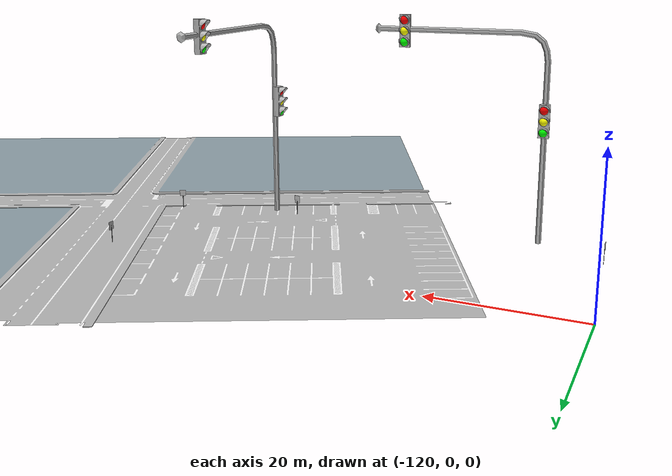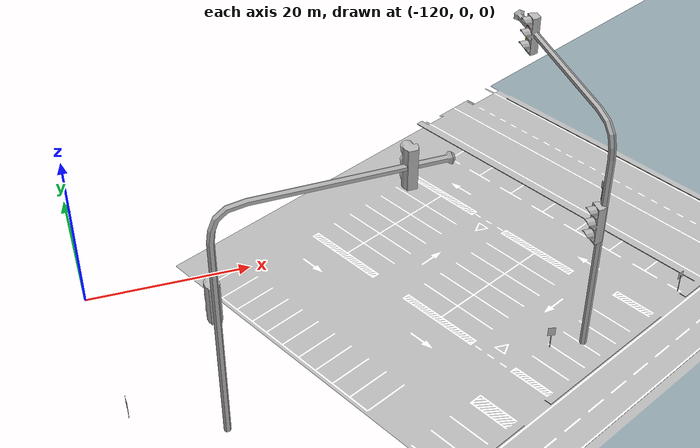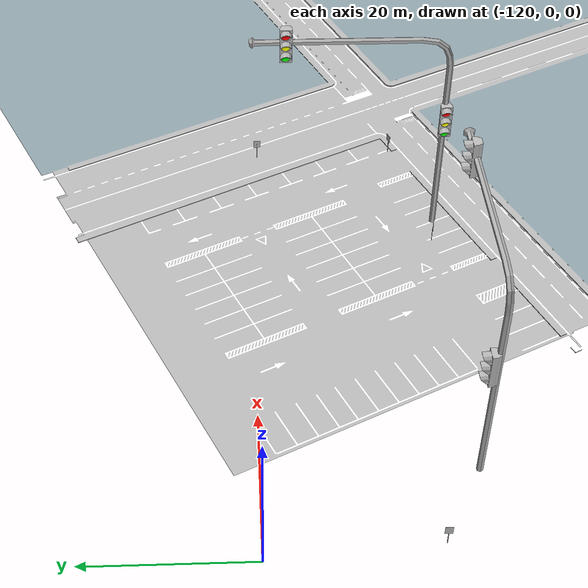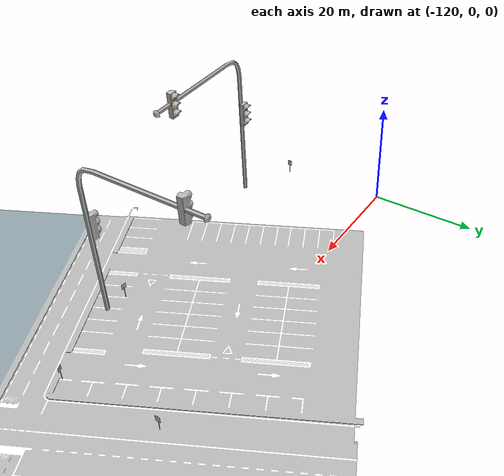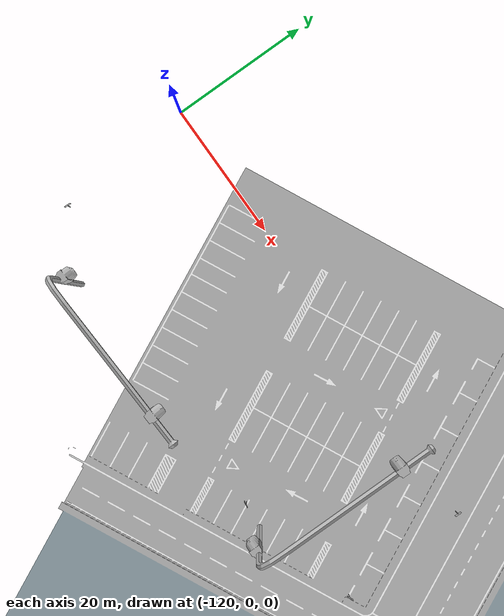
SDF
<sdf version="1.6">
 <world name="default">
  <model name="right_turn_only_clone_2">
   <static>1</static>
   <link name="link">
    <collision name="collision">
     <geometry>
      <mesh><scale>1 1 1</scale><uri>model://right_turn_only/meshes/right_turn_only.dae</uri></mesh>
     </geometry>
    </collision>
    <visual name="visual">
     <geometry>
      <mesh><scale>1 1 1</scale><uri>model://right_turn_only/meshes/right_turn_only.dae</uri></mesh>
     </geometry>
    </visual>
   </link>
   <pose>-118.173 -19.9532 0 0 -0 3.13054</pose>
  </model>
  <model name="right_turn_only_clone_3">
   <static>1</static>
   <link name="link">
    <collision name="collision">
     <geometry>
      <mesh><scale>1 1 1</scale><uri>model://right_turn_only/meshes/right_turn_only.dae</uri></mesh>
     </geometry>
    </collision>
    <visual name="visual">
     <geometry>
      <mesh><scale>1 1 1</scale><uri>model://right_turn_only/meshes/right_turn_only.dae</uri></mesh>
     </geometry>
    </visual>
   </link>
   <pose>-71.0591 -23.7095 0 0 0 -1.70966</pose>
  </model>
  <model name="disabled_parking_clone">
   <static>1</static>
   <link name="link">
    <collision name="collision">
     <geometry>
      <mesh><scale>1 1 1</scale><uri>model://disabled_parking/meshes/disabled_parking.dae</uri></mesh>
     </geometry>
    </collision>
    <visual name="visual">
     <geometry>
      <mesh><scale>1 1 1</scale><uri>model://disabled_parking/meshes/disabled_parking.dae</uri></mesh>
     </geometry>
    </visual>
   </link>
   <pose>-52.5378 -19.6503 0 0 -0 1.97264</pose>
  </model>
  <model name="parking_clone">
   <static>1</static>
   <link name="link">
    <collision name="collision">
     <geometry><mesh><scale>1 1 1</scale><uri>model://parking/meshes/parking.dae</uri></mesh></geometry>
    </collision>
    <visual name="visual">
     <geometry><mesh><scale>1 1 1</scale><uri>model://parking/meshes/parking.dae</uri></mesh></geometry>
    </visual>
   </link>
   <pose>-41.8213 -19.7691 0 0 -0 2.02162</pose>
  </model>
  <model name="left_turn_only_clone_2">
   <static>1</static>
   <link name="link">
    <collision name="collision">
     <geometry>
      <mesh><scale>1 1 1</scale><uri>model://left_turn_only/meshes/left_turn_only.dae</uri></mesh>
     </geometry>
    </collision>
    <visual name="visual">
     <geometry>
      <mesh><scale>1 1 1</scale><uri>model://left_turn_only/meshes/left_turn_only.dae</uri></mesh>
     </geometry>
    </visual>
   </link>
   <pose>-53.3552 -1.06942 0 0 -0 0</pose>
  </model>
  <model name="stop_light_post_4">
   <static>1</static>
   <link name="link">
    <collision name="post">
     <geometry>
      <mesh><uri>model://stop_light_post/meshes/stop_light_post.obj</uri><scale>0.05 0.05 0.05</scale></mesh>
     </geometry>
    </collision>
    <visual name="post">
     <geometry>
      <mesh><uri>model://stop_light_post/meshes/stop_light_post.obj</uri><scale>0.05 0.05 0.05</scale></mesh>
     </geometry>
    </visual>
   </link>
   <static>1</static>
   <link name="right_light::link">
    <collision name="collision">
     <geometry>
      <mesh><uri>model://stop_light/meshes/stop_light.obj</uri><scale>0.06 0.06 0.06</scale></mesh>
     </geometry>
    </collision>
    <visual name="frame">
     <geometry>
      <mesh><uri>model://stop_light/meshes/stop_light.obj</uri><scale>0.06 0.06 0.06</scale></mesh>
     </geometry>
    </visual>
    <visual name="red">
     <pose>-0.06738 -0.493506 -0.885084 0 -0 0</pose>
     <geometry><sphere><radius>0.66</radius></sphere></geometry>
     <material>
      <script>
       <uri>model://stop_light/materials/scripts/</uri>
       <uri>model://stop_light/materials/textures/</uri>
       <name>StopLight/Light</name>
      </script>
      <ambient>1 0 0 1</ambient>
      <specular>1 0 0 1</specular>
     </material>
    </visual>
    <visual name="yellow">
     <pose>-0.06738 -0.493506 -2.412 0 -0 0</pose>
     <geometry><sphere><radius>0.66</radius></sphere></geometry>
     <material>
      <script>
       <uri>model://stop_light/materials/scripts/</uri>
       <uri>model://stop_light/materials/textures/</uri>
       <name>StopLight/Light</name>
      </script>
      <ambient>1 1 0 1</ambient>
      <specular>1 1 0 1</specular>
     </material>
    </visual>
    <visual name="green">
     <pose>-0.06738 -0.493506 -3.93 0 -0 0</pose>
     <geometry><sphere><radius>0.66</radius></sphere></geometry>
     <material>
      <script>
       <uri>model://stop_light/materials/scripts/</uri>
       <uri>model://stop_light/materials/textures/</uri>
       <name>StopLight/Light</name>
      </script>
      <ambient>0 1 0 1</ambient>
      <specular>0 1 0 1</specular>
     </material>
    </visual>
    <pose>0 -0.25 20 0 -0 0</pose>
   </link>
   <static>1</static>
   <link name="center_light::link">
    <collision name="collision">
     <geometry>
      <mesh><uri>model://stop_light/meshes/stop_light.obj</uri><scale>0.06 0.06 0.06</scale></mesh>
     </geometry>
    </collision>
    <visual name="frame">
     <geometry>
      <mesh><uri>model://stop_light/meshes/stop_light.obj</uri><scale>0.06 0.06 0.06</scale></mesh>
     </geometry>
    </visual>
    <visual name="red">
     <pose>-0.06738 -0.493506 -0.885084 0 -0 0</pose>
     <geometry><sphere><radius>0.66</radius></sphere></geometry>
     <material>
      <script>
       <uri>model://stop_light/materials/scripts/</uri>
       <uri>model://stop_light/materials/textures/</uri>
       <name>StopLight/Light</name>
      </script>
      <ambient>1 0 0 1</ambient>
      <specular>1 0 0 1</specular>
     </material>
    </visual>
    <visual name="yellow">
     <pose>-0.06738 -0.493506 -2.412 0 -0 0</pose>
     <geometry><sphere><radius>0.66</radius></sphere></geometry>
     <material>
      <script>
       <uri>model://stop_light/materials/scripts/</uri>
       <uri>model://stop_light/materials/textures/</uri>
       <name>StopLight/Light</name>
      </script>
      <ambient>1 1 0 1</ambient>
      <specular>1 1 0 1</specular>
     </material>
    </visual>
    <visual name="green">
     <pose>-0.06738 -0.493506 -3.93 0 -0 0</pose>
     <geometry><sphere><radius>0.66</radius></sphere></geometry>
     <material>
      <script>
       <uri>model://stop_light/materials/scripts/</uri>
       <uri>model://stop_light/materials/textures/</uri>
       <name>StopLight/Light</name>
      </script>
      <ambient>0 1 0 1</ambient>
      <specular>0 1 0 1</specular>
     </material>
    </visual>
    <pose>-20 0.2 31.5 0 -0 0</pose>
   </link>
   <pose>-108.613 -24.8075 0 0 0 -3.09816</pose>
  </model>
  <model name="stop_light_post_6">
   <static>1</static>
   <link name="link">
    <collision name="post">
     <geometry>
      <mesh><uri>model://stop_light_post/meshes/stop_light_post.obj</uri><scale>0.05 0.05 0.05</scale></mesh>
     </geometry>
    </collision>
    <visual name="post">
     <geometry>
      <mesh><uri>model://stop_light_post/meshes/stop_light_post.obj</uri><scale>0.05 0.05 0.05</scale></mesh>
     </geometry>
    </visual>
   </link>
   <static>1</static>
   <link name="right_light::link">
    <collision name="collision">
     <geometry>
      <mesh><uri>model://stop_light/meshes/stop_light.obj</uri><scale>0.06 0.06 0.06</scale></mesh>
     </geometry>
    </collision>
    <visual name="frame">
     <geometry>
      <mesh><uri>model://stop_light/meshes/stop_light.obj</uri><scale>0.06 0.06 0.06</scale></mesh>
     </geometry>
    </visual>
    <visual name="red">
     <pose>-0.06738 -0.493506 -0.885084 0 -0 0</pose>
     <geometry><sphere><radius>0.66</radius></sphere></geometry>
     <material>
      <script>
       <uri>model://stop_light/materials/scripts/</uri>
       <uri>model://stop_light/materials/textures/</uri>
       <name>StopLight/Light</name>
      </script>
      <ambient>1 0 0 1</ambient>
      <specular>1 0 0 1</specular>
     </material>
    </visual>
    <visual name="yellow">
     <pose>-0.06738 -0.493506 -2.412 0 -0 0</pose>
     <geometry><sphere><radius>0.66</radius></sphere></geometry>
     <material>
      <script>
       <uri>model://stop_light/materials/scripts/</uri>
       <uri>model://stop_light/materials/textures/</uri>
       <name>StopLight/Light</name>
      </script>
      <ambient>1 1 0 1</ambient>
      <specular>1 1 0 1</specular>
     </material>
    </visual>
    <visual name="green">
     <pose>-0.06738 -0.493506 -3.93 0 -0 0</pose>
     <geometry><sphere><radius>0.66</radius></sphere></geometry>
     <material>
      <script>
       <uri>model://stop_light/materials/scripts/</uri>
       <uri>model://stop_light/materials/textures/</uri>
       <name>StopLight/Light</name>
      </script>
      <ambient>0 1 0 1</ambient>
      <specular>0 1 0 1</specular>
     </material>
    </visual>
    <pose>0 -0.25 20 0 -0 0</pose>
   </link>
   <static>1</static>
   <link name="center_light::link">
    <collision name="collision">
     <geometry>
      <mesh><uri>model://stop_light/meshes/stop_light.obj</uri><scale>0.06 0.06 0.06</scale></mesh>
     </geometry>
    </collision>
    <visual name="frame">
     <geometry>
      <mesh><uri>model://stop_light/meshes/stop_light.obj</uri><scale>0.06 0.06 0.06</scale></mesh>
     </geometry>
    </visual>
    <visual name="red">
     <pose>-0.06738 -0.493506 -0.885084 0 -0 0</pose>
     <geometry><sphere><radius>0.66</radius></sphere></geometry>
     <material>
      <script>
       <uri>model://stop_light/materials/scripts/</uri>
       <uri>model://stop_light/materials/textures/</uri>
       <name>StopLight/Light</name>
      </script>
      <ambient>1 0 0 1</ambient>
      <specular>1 0 0 1</specular>
     </material>
    </visual>
    <visual name="yellow">
     <pose>-0.06738 -0.493506 -2.412 0 -0 0</pose>
     <geometry><sphere><radius>0.66</radius></sphere></geometry>
     <material>
      <script>
       <uri>model://stop_light/materials/scripts/</uri>
       <uri>model://stop_light/materials/textures/</uri>
       <name>StopLight/Light</name>
      </script>
      <ambient>1 1 0 1</ambient>
      <specular>1 1 0 1</specular>
     </material>
    </visual>
    <visual name="green">
     <pose>-0.06738 -0.493506 -3.93 0 -0 0</pose>
     <geometry><sphere><radius>0.66</radius></sphere></geometry>
     <material>
      <script>
       <uri>model://stop_light/materials/scripts/</uri>
       <uri>model://stop_light/materials/textures/</uri>
       <name>StopLight/Light</name>
      </script>
      <ambient>0 1 0 1</ambient>
      <specular>0 1 0 1</specular>
     </material>
    </visual>
    <pose>-20 0.2 31.5 0 -0 0</pose>
   </link>
   <pose>-67.2053 -24.2973 0 0 0 -1.57224</pose>
  </model>
 </world>
</sdf>
